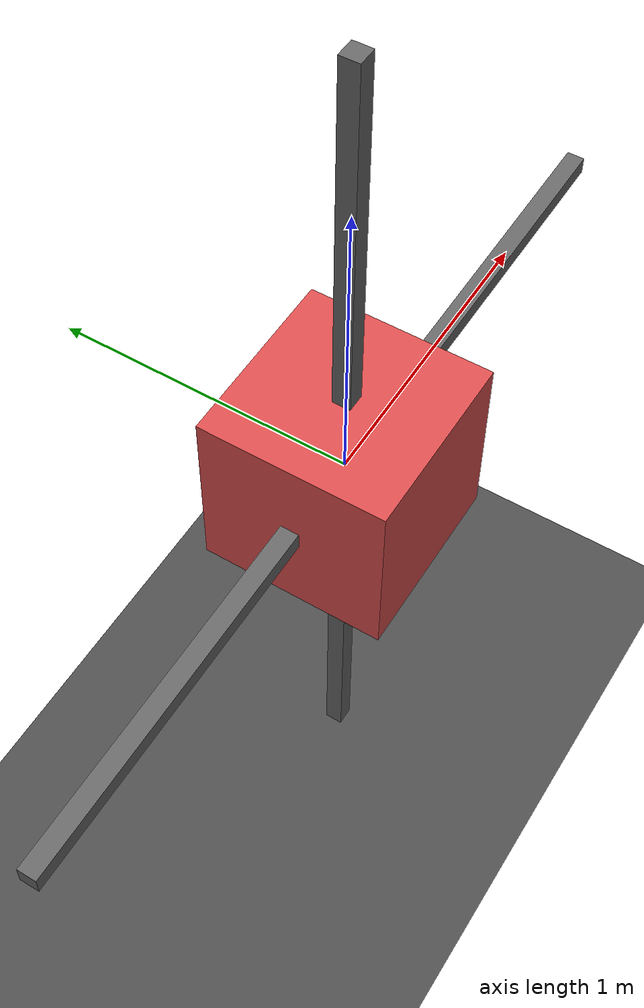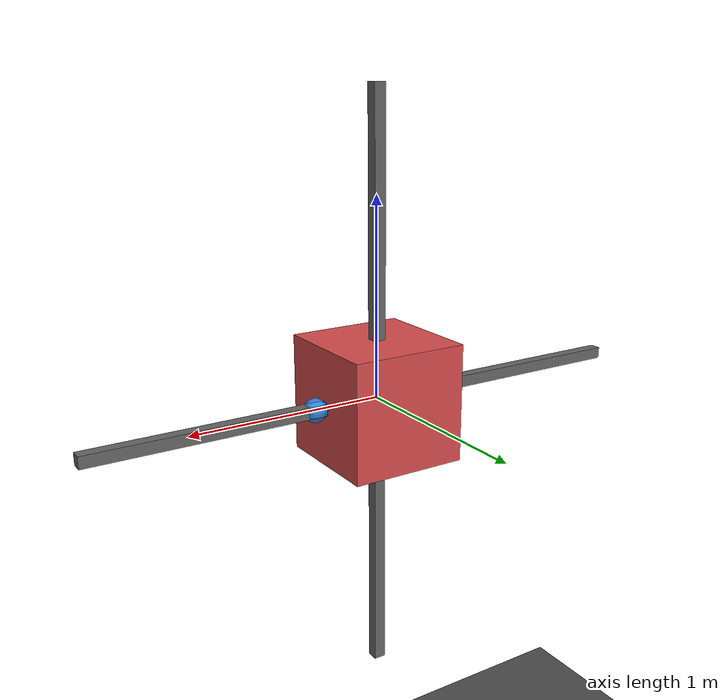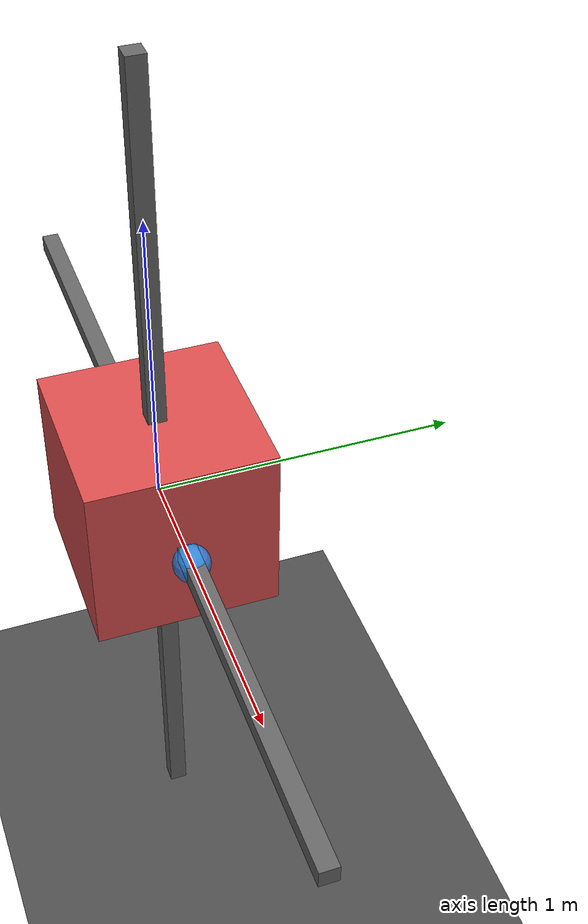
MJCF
<mujoco model="cartesian_admittance">
  <option gravity="0 0 -9.81" timestep="0.002"/>

  <default>
    <geom contype="0" conaffinity="0"/>
  </default>

  <worldbody>
    <!-- Ground plane for visual reference -->
    <geom name="ground" type="plane" size="3 3 0.01" pos="0 0 -2.5" rgba="0.3 0.3 0.3 1"/>

    <!-- Base frame -->
    <body name="base" pos="0 0 0">
      <!-- Horizontal prismatic joint (X axis) -->
      <joint name="x_joint" type="slide" axis="1 0 0" limited="true" range="-1.5 1.5"/>
      <geom name="x_rail" type="box" size="1.5 0.03 0.03" rgba="0.4 0.4 0.4 1"/>

      <body name="carriage" pos="0 0 0">
        <!-- Vertical prismatic joint (Z axis) -->
        <joint name="z_joint" type="slide" axis="0 0 1" limited="true" range="-1.5 1.5"/>
        <geom name="z_rail" type="box" size="0.03 0.03 1.5" rgba="0.4 0.4 0.4 1"/>

        <body name="end_effector" pos="0 0 0">
          <!-- The 100kg cube -->
          <geom name="cube" type="box" size="0.3 0.3 0.3" mass="100" rgba="0.85 0.3 0.3 1"/>
          <!-- Handle where human applies force -->
          <site name="handle" type="sphere" size="0.06" pos="0.35 0 0" rgba="0.2 0.6 1 0.8"/>
        </body>
      </body>
    </body>
  </worldbody>

  <actuator>
    <!-- Torque-controlled motors for direct force control -->
    <motor name="motor_x" joint="x_joint" gear="1" ctrllimited="true" ctrlrange="-2000 2000"/>
    <motor name="motor_z" joint="z_joint" gear="1" ctrllimited="true" ctrlrange="-2000 2000"/>
  </actuator>

  <sensor>
    <force name="handle_force" site="handle"/>
  </sensor>
</mujoco>
